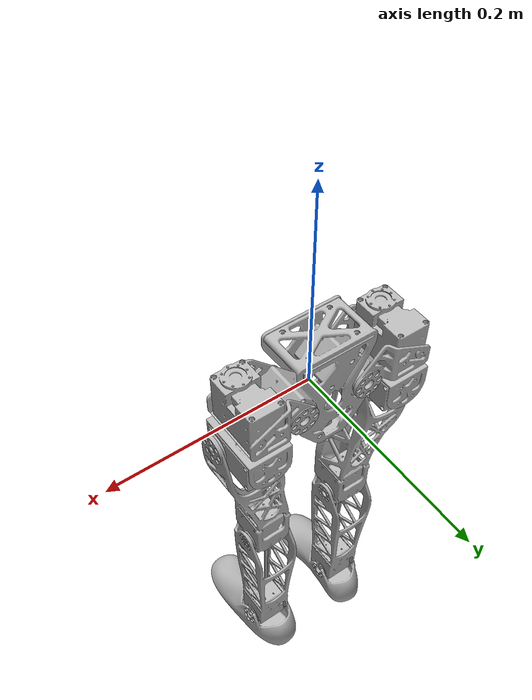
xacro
<?xml version="1.0" ?>
<robot name="kaybot10" xmlns:xacro="http://www.ros.org/wiki/xacro">

<xacro:include filename="$(find kaybot10)/urdf/materials.xacro" />
<xacro:include filename="$(find kaybot10)/urdf/kaybot10.trans" />
<xacro:include filename="$(find kaybot10)/urdf/kaybot10.gazebo" />
<link name="base_link">
  <inertial>
    <origin xyz="3.140088934331665e-05 0.010194159191315486 0.010173570952179724" rpy="0 0 0"/>
    <mass value="1.649348157294341"/>
    <inertia ixx="0.001319" iyy="0.002065" izz="0.001479" ixy="-1e-06" iyz="-4e-06" ixz="0.000201"/>
  </inertial>
  <visual>
    <origin xyz="0 0 0" rpy="0 0 0"/>
    <geometry>
      <mesh filename="package://kaybot10/meshes/base_link.stl" scale="0.001 0.001 0.001"/>
    </geometry>
    <material name="silver"/>
  </visual>
  <collision>
    <origin xyz="0 0 0" rpy="0 0 0"/>
    <geometry>
      <mesh filename="package://kaybot10/meshes/base_link.stl" scale="0.001 0.001 0.001"/>
    </geometry>
  </collision>
</link>

<link name="lt_pelvis_1">
  <inertial>
    <origin xyz="0.03767602809433948 0.028926258572985135 0.019179539986440487" rpy="0 0 0"/>
    <mass value="0.7785969063923761"/>
    <inertia ixx="0.000416" iyy="0.000275" izz="0.000399" ixy="-5e-06" iyz="0.0" ixz="-2.3e-05"/>
  </inertial>
  <visual>
    <origin xyz="-0.034028 0.013748 -0.007004" rpy="0 0 0"/>
    <geometry>
      <mesh filename="package://kaybot10/meshes/lt_pelvis_1.stl" scale="0.001 0.001 0.001"/>
    </geometry>
    <material name="silver"/>
  </visual>
  <collision>
    <origin xyz="-0.034028 0.013748 -0.007004" rpy="0 0 0"/>
    <geometry>
      <mesh filename="package://kaybot10/meshes/lt_pelvis_1.stl" scale="0.001 0.001 0.001"/>
    </geometry>
  </collision>
</link>

<link name="lt_hip_1">
  <inertial>
    <origin xyz="0.0005736858221648405 0.014325230602613094 -0.024436695057386784" rpy="0 0 0"/>
    <mass value="0.7779981409617496"/>
    <inertia ixx="0.000345" iyy="0.000217" izz="0.000382" ixy="1e-06" iyz="9e-06" ixz="1e-06"/>
  </inertial>
  <visual>
    <origin xyz="-0.074028 -2e-06 -0.004504" rpy="0 0 0"/>
    <geometry>
      <mesh filename="package://kaybot10/meshes/lt_hip_1.stl" scale="0.001 0.001 0.001"/>
    </geometry>
    <material name="silver"/>
  </visual>
  <collision>
    <origin xyz="-0.074028 -2e-06 -0.004504" rpy="0 0 0"/>
    <geometry>
      <mesh filename="package://kaybot10/meshes/lt_hip_1.stl" scale="0.001 0.001 0.001"/>
    </geometry>
  </collision>
</link>

<link name="lt_thigh_1">
  <inertial>
    <origin xyz="-0.041003347773027166 -0.0013334269775511095 -0.12953470296267605" rpy="0 0 0"/>
    <mass value="0.7202675226044857"/>
    <inertia ixx="0.002544" iyy="0.002606" izz="0.000386" ixy="-8e-06" iyz="-1.9e-05" ixz="-0.000355"/>
  </inertial>
  <visual>
    <origin xyz="-0.098528 -2e-06 0.021746" rpy="0 0 0"/>
    <geometry>
      <mesh filename="package://kaybot10/meshes/lt_thigh_1.stl" scale="0.001 0.001 0.001"/>
    </geometry>
    <material name="silver"/>
  </visual>
  <collision>
    <origin xyz="-0.098528 -2e-06 0.021746" rpy="0 0 0"/>
    <geometry>
      <mesh filename="package://kaybot10/meshes/lt_thigh_1.stl" scale="0.001 0.001 0.001"/>
    </geometry>
  </collision>
</link>

<link name="lt_shin_1">
  <inertial>
    <origin xyz="-0.070507 -2e-06 0.20375" rpy="0 0 0"/>
    <mass value="0.65"/>
    <inertia ixx="0.002506" iyy="0.002508" izz="0.000254" ixy="-4e-07" iyz="0.000112" ixz="9e-06"/>
  </inertial>
  <visual>
    <origin xyz="-0.070507 -2e-06 0.20375" rpy="0 0 0"/>
    <geometry>
      <mesh filename="package://kaybot10/meshes/lt_shin_1.stl" scale="0.001 0.001 0.001"/>
    </geometry>
    <material name="silver"/>
  </visual>
  <collision>
    <origin xyz="-0.070507 -2e-06 0.20375" rpy="0 0 0"/>
    <geometry>
      <mesh filename="package://kaybot10/meshes/lt_shin_1.stl" scale="0.001 0.001 0.001"/>
    </geometry>
  </collision>
</link>

<link name="lt_foot_1">
  <inertial>
    <origin xyz="-0.01657075633903557 -0.026580001589888803 -0.023131878616310497" rpy="0 0 0"/>
    <mass value="0.39908822855927323"/>
    <inertia ixx="0.000692" iyy="0.000155" izz="0.000753" ixy="2e-05" iyz="-2.9e-05" ixz="2e-06"/>
  </inertial>
  <visual>
    <origin xyz="-0.070598 9e-06 0.378765" rpy="0 0 0"/>
    <geometry>
      <mesh filename="package://kaybot10/meshes/lt_foot_1.stl" scale="0.001 0.001 0.001"/>
    </geometry>
    <material name="silver"/>
  </visual>
  <collision>
    <origin xyz="-0.070598 9e-06 0.378765" rpy="0 0 0"/>
    <geometry>
      <mesh filename="package://kaybot10/meshes/lt_foot_1.stl" scale="0.001 0.001 0.001"/>
    </geometry>
  </collision>
</link>

<link name="rt_pelvis_1">
  <inertial>
    <origin xyz="-0.03767603733831762 0.02892625977903276 0.019179545789006117" rpy="0 0 0"/>
    <mass value="0.7785966575822303"/>
    <inertia ixx="0.000416" iyy="0.000275" izz="0.000399" ixy="5e-06" iyz="0.0" ixz="2.3e-05"/>
  </inertial>
  <visual>
    <origin xyz="0.034028 0.013748 -0.007004" rpy="0 0 0"/>
    <geometry>
      <mesh filename="package://kaybot10/meshes/rt_pelvis_1.stl" scale="0.001 0.001 0.001"/>
    </geometry>
    <material name="silver"/>
  </visual>
  <collision>
    <origin xyz="0.034028 0.013748 -0.007004" rpy="0 0 0"/>
    <geometry>
      <mesh filename="package://kaybot10/meshes/rt_pelvis_1.stl" scale="0.001 0.001 0.001"/>
    </geometry>
  </collision>
</link>

<link name="rt_hip_1">
  <inertial>
    <origin xyz="-0.0005699203775652167 0.014516833705083 -0.024447344207404655" rpy="0 0 0"/>
    <mass value="0.7827072740919705"/>
    <inertia ixx="0.000349" iyy="0.000218" izz="0.000387" ixy="-1e-06" iyz="9e-06" ixz="-1e-06"/>
  </inertial>
  <visual>
    <origin xyz="0.074028 -2e-06 -0.004504" rpy="0 0 0"/>
    <geometry>
      <mesh filename="package://kaybot10/meshes/rt_hip_1.stl" scale="0.001 0.001 0.001"/>
    </geometry>
    <material name="silver"/>
  </visual>
  <collision>
    <origin xyz="0.074028 -2e-06 -0.004504" rpy="0 0 0"/>
    <geometry>
      <mesh filename="package://kaybot10/meshes/rt_hip_1.stl" scale="0.001 0.001 0.001"/>
    </geometry>
  </collision>
</link>

<link name="rt_thigh_1">
  <inertial>
    <origin xyz="0.041003347772133575 -0.001333426967637988 -0.12953470295495628" rpy="0 0 0"/>
    <mass value="0.720267522768661"/>
    <inertia ixx="0.002544" iyy="0.002606" izz="0.000386" ixy="8e-06" iyz="-1.9e-05" ixz="0.000355"/>
  </inertial>
  <visual>
    <origin xyz="0.098528 -2e-06 0.021746" rpy="0 0 0"/>
    <geometry>
      <mesh filename="package://kaybot10/meshes/rt_thigh_1.stl" scale="0.001 0.001 0.001"/>
    </geometry>
    <material name="silver"/>
  </visual>
  <collision>
    <origin xyz="0.098528 -2e-06 0.021746" rpy="0 0 0"/>
    <geometry>
      <mesh filename="package://kaybot10/meshes/rt_thigh_1.stl" scale="0.001 0.001 0.001"/>
    </geometry>
  </collision>
</link>

<link name="rt_shin_1">
  <inertial>
    <origin xyz="0.070507 -2e-06 0.20375" rpy="0 0 0"/>
    <mass value="0.65"/>
    <inertia ixx="0.002506" iyy="0.002508" izz="0.000254" ixy="4e-07" iyz="0.000112" ixz="-9e-06"/>
  </inertial>
  <visual>
    <origin xyz="0.070507 -2e-06 0.20375" rpy="0 0 0"/>
    <geometry>
      <mesh filename="package://kaybot10/meshes/rt_shin_1.stl" scale="0.001 0.001 0.001"/>
    </geometry>
    <material name="silver"/>
  </visual>
  <collision>
    <origin xyz="0.070507 -2e-06 0.20375" rpy="0 0 0"/>
    <geometry>
      <mesh filename="package://kaybot10/meshes/rt_shin_1.stl" scale="0.001 0.001 0.001"/>
    </geometry>
  </collision>
</link>

<link name="rt_foot_1">
  <inertial>
    <origin xyz="0.016570756635077774 -0.026580001408635853 -0.02313187862593763" rpy="0 0 0"/>
    <mass value="0.39908823361834167"/>
    <inertia ixx="0.000692" iyy="0.000155" izz="0.000753" ixy="-2e-05" iyz="-2.9e-05" ixz="-2e-06"/>
  </inertial>
  <visual>
    <origin xyz="0.070598 9e-06 0.378765" rpy="0 0 0"/>
    <geometry>
      <mesh filename="package://kaybot10/meshes/rt_foot_1.stl" scale="0.001 0.001 0.001"/>
    </geometry>
    <material name="silver"/>
  </visual>
  <collision>
    <origin xyz="0.070598 9e-06 0.378765" rpy="0 0 0"/>
    <geometry>
      <mesh filename="package://kaybot10/meshes/rt_foot_1.stl" scale="0.001 0.001 0.001"/>
    </geometry>
  </collision>
</link>

<joint name="lt_abd" type="revolute">
  <origin xyz="0.034028 -0.013748 0.007004" rpy="0 0 0"/>
  <parent link="base_link"/>
  <child link="lt_pelvis_1"/>
  <axis xyz="-0.0 1.0 0.0"/>
  <limit upper="0.261799" lower="-0.261799" effort="100" velocity="100"/>
</joint>

<joint name="lt_rot" type="revolute">
  <origin xyz="0.04 0.01375 -0.0025" rpy="0 0 0"/>
  <parent link="lt_pelvis_1"/>
  <child link="lt_hip_1"/>
  <axis xyz="-0.0 0.0 -1.0"/>
  <limit upper="0.261799" lower="-0.087266" effort="100" velocity="100"/>
</joint>

<joint name="lt_flex" type="revolute">
  <origin xyz="0.0245 0.0 -0.02625" rpy="0 0 0"/>
  <parent link="lt_hip_1"/>
  <child link="lt_thigh_1"/>
  <axis xyz="-1.0 -0.0 0.0"/>
  <limit upper="1.22173" lower="-0.523599" effort="100" velocity="100"/>
</joint>

<joint name="lt_knee" type="revolute">
  <origin xyz="-0.028021 0.0 -0.182004" rpy="0 0 0"/>
  <parent link="lt_thigh_1"/>
  <child link="lt_shin_1"/>
  <axis xyz="-1.0 -0.0 0.0"/>
  <limit upper="0.0" lower="-1.919862" effort="100" velocity="100"/>
</joint>

<joint name="lt_ankle" type="revolute">
  <origin xyz="9.1e-05 -1.1e-05 -0.175015" rpy="0 0 0"/>
  <parent link="lt_shin_1"/>
  <child link="lt_foot_1"/>
  <axis xyz="1.0 0.0 -0.0"/>
  <limit upper="0.523599" lower="-0.261799" effort="100" velocity="100"/>
</joint>

<joint name="rt_abd" type="revolute">
  <origin xyz="-0.034028 -0.013748 0.007004" rpy="0 0 0"/>
  <parent link="base_link"/>
  <child link="rt_pelvis_1"/>
  <axis xyz="-0.0 1.0 0.0"/>
  <limit upper="0.261799" lower="-0.261799" effort="100" velocity="100"/>
</joint>

<joint name="rt_rot" type="revolute">
  <origin xyz="-0.04 0.01375 -0.0025" rpy="0 0 0"/>
  <parent link="rt_pelvis_1"/>
  <child link="rt_hip_1"/>
  <axis xyz="-0.0 -0.0 1.0"/>
  <limit upper="0.261799" lower="-0.087266" effort="100" velocity="100"/>
</joint>

<joint name="rt_flex" type="revolute">
  <origin xyz="-0.0245 0.0 -0.02625" rpy="0 0 0"/>
  <parent link="rt_hip_1"/>
  <child link="rt_thigh_1"/>
  <axis xyz="-1.0 -0.0 -0.0"/>
  <limit upper="1.22173" lower="-0.523599" effort="100" velocity="100"/>
</joint>

<joint name="rt_knee" type="revolute">
  <origin xyz="0.028021 0.0 -0.182004" rpy="0 0 0"/>
  <parent link="rt_thigh_1"/>
  <child link="rt_shin_1"/>
  <axis xyz="-1.0 -0.0 -0.0"/>
  <limit upper="0.0" lower="-1.919862" effort="100" velocity="100"/>
</joint>

<joint name="rt_ankle" type="revolute">
  <origin xyz="-9.1e-05 -1.1e-05 -0.175015" rpy="0 0 0"/>
  <parent link="rt_shin_1"/>
  <child link="rt_foot_1"/>
  <axis xyz="1.0 -0.0 0.0"/>
  <limit upper="0.523599" lower="-0.261799" effort="100" velocity="100"/>
</joint>

<ros2_control name="GazeboSimSystem" type="system">
  <hardware>
    <plugin>gz_ros2_control/GazeboSimSystem</plugin>
  </hardware>

  <joint name="lt_abd">
    <command_interface name="position"/>
    <state_interface name="position"/>
    <state_interface name="velocity"/>
  </joint>
  <joint name="lt_rot">
    <command_interface name="position"/>
    <state_interface name="position"/>
    <state_interface name="velocity"/>
  </joint>
  <joint name="lt_flex">
    <command_interface name="position"/>
    <state_interface name="position"/>
    <state_interface name="velocity"/>
  </joint>
  <joint name="lt_knee">
    <command_interface name="position"/>
    <state_interface name="position"/>
    <state_interface name="velocity"/>
  </joint>
  <joint name="lt_ankle">
    <command_interface name="position"/>
    <state_interface name="position"/>
    <state_interface name="velocity"/>
  </joint>

  <joint name="rt_abd">
    <command_interface name="position"/>
    <state_interface name="position"/>
    <state_interface name="velocity"/>
  </joint>
  <joint name="rt_rot">
    <command_interface name="position"/>
    <state_interface name="position"/>
    <state_interface name="velocity"/>
  </joint>
  <joint name="rt_flex">
    <command_interface name="position"/>
    <state_interface name="position"/>
    <state_interface name="velocity"/>
  </joint>
  <joint name="rt_knee">
    <command_interface name="position"/>
    <state_interface name="position"/>
    <state_interface name="velocity"/>
  </joint>
  <joint name="rt_ankle">
    <command_interface name="position"/>
    <state_interface name="position"/>
    <state_interface name="velocity"/>
  </joint>
</ros2_control>

<gazebo>
  <plugin
    filename="gz_ros2_control-system"
    name="gz_ros2_control::GazeboSimROS2ControlPlugin">
    <parameters>$(find kaybot10)/config/kaybot10_controllers.yaml</parameters>
  </plugin>
</gazebo>

<gazebo reference="base_link">
  <sensor name="imu_sensor" type="imu">
    <always_on>1</always_on>
    <update_rate>100</update_rate>
    <visualize>true</visualize>
    <topic>imu</topic>
    <plugin filename="gz-sim-imu-system" name="gz::sim::systems::Imu">
    </plugin>
  </sensor>
</gazebo>

<gazebo>
  <plugin filename="gz-sim-imu-system" name="gz::sim::systems::Imu">
  </plugin>
</gazebo>

</robot>

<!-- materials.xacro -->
<robot name="kaybot10" xmlns:xacro="http://www.ros.org/wiki/xacro" >

<material name="silver">
  <color rgba="0.700 0.700 0.700 1.000"/>
</material>

</robot>

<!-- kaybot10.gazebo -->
<robot name="kaybot10" xmlns:xacro="http://www.ros.org/wiki/xacro" >

<xacro:property name="body_color" value="Gazebo/Silver" />

<gazebo>
  <plugin name="control" filename="libgazebo_ros_control.so"/>
</gazebo>
<gazebo reference="base_link">
  <material>${body_color}</material>
  <mu1>0.2</mu1>
  <mu2>0.2</mu2>
  <selfCollide>true</selfCollide>
  <gravity>true</gravity>
</gazebo>

<gazebo reference="lt_pelvis_1">
  <material>${body_color}</material>
  <mu1>0.2</mu1>
  <mu2>0.2</mu2>
  <selfCollide>true</selfCollide>
</gazebo>

<gazebo reference="lt_hip_1">
  <material>${body_color}</material>
  <mu1>0.2</mu1>
  <mu2>0.2</mu2>
  <selfCollide>true</selfCollide>
</gazebo>

<gazebo reference="lt_thigh_1">
  <material>${body_color}</material>
  <mu1>0.2</mu1>
  <mu2>0.2</mu2>
  <selfCollide>true</selfCollide>
</gazebo>

<gazebo reference="lt_shin_1">
  <material>${body_color}</material>
  <mu1>0.2</mu1>
  <mu2>0.2</mu2>
  <selfCollide>true</selfCollide>
</gazebo>

<gazebo reference="lt_foot_1">
  <material>${body_color}</material>
  <mu1>0.2</mu1>
  <mu2>0.2</mu2>
  <selfCollide>true</selfCollide>
</gazebo>

<gazebo reference="rt_pelvis_1">
  <material>${body_color}</material>
  <mu1>0.2</mu1>
  <mu2>0.2</mu2>
  <selfCollide>true</selfCollide>
</gazebo>

<gazebo reference="rt_hip_1">
  <material>${body_color}</material>
  <mu1>0.2</mu1>
  <mu2>0.2</mu2>
  <selfCollide>true</selfCollide>
</gazebo>

<gazebo reference="rt_thigh_1">
  <material>${body_color}</material>
  <mu1>0.2</mu1>
  <mu2>0.2</mu2>
  <selfCollide>true</selfCollide>
</gazebo>

<gazebo reference="rt_shin_1">
  <material>${body_color}</material>
  <mu1>0.2</mu1>
  <mu2>0.2</mu2>
  <selfCollide>true</selfCollide>
</gazebo>

<gazebo reference="rt_foot_1">
  <material>${body_color}</material>
  <mu1>0.2</mu1>
  <mu2>0.2</mu2>
  <selfCollide>true</selfCollide>
</gazebo>

</robot>
